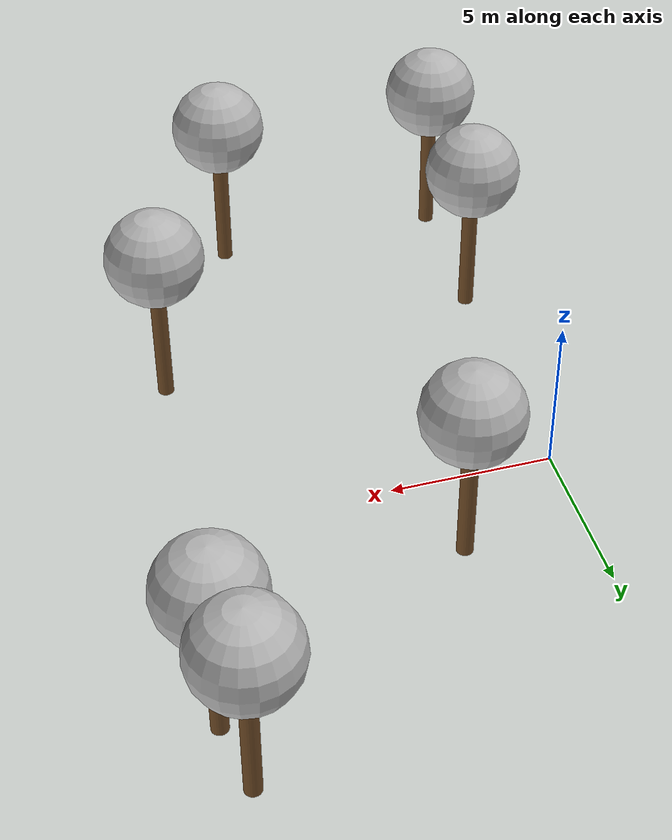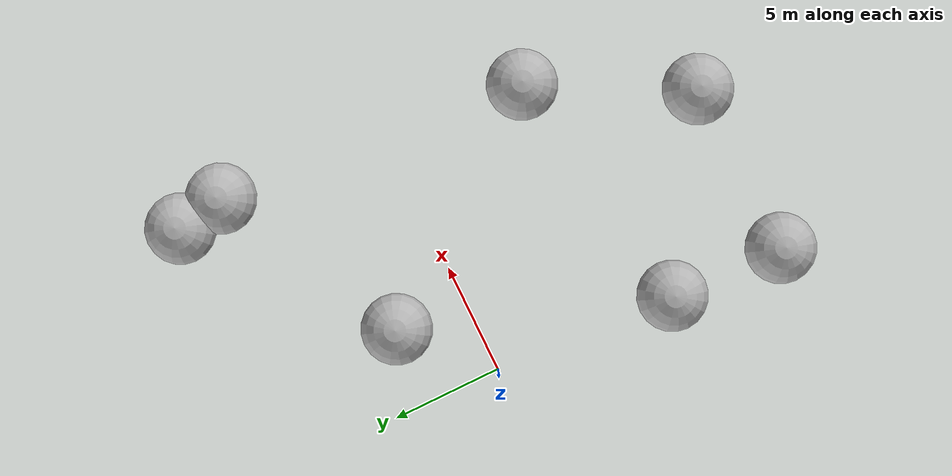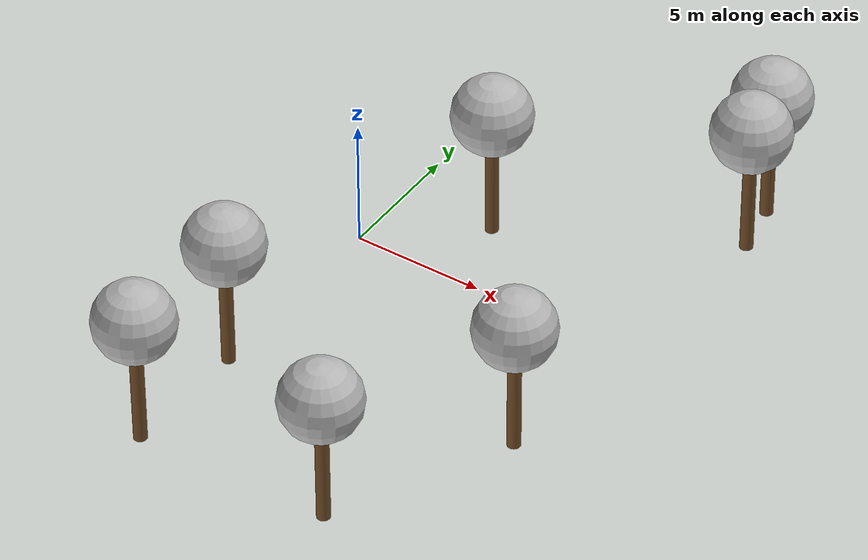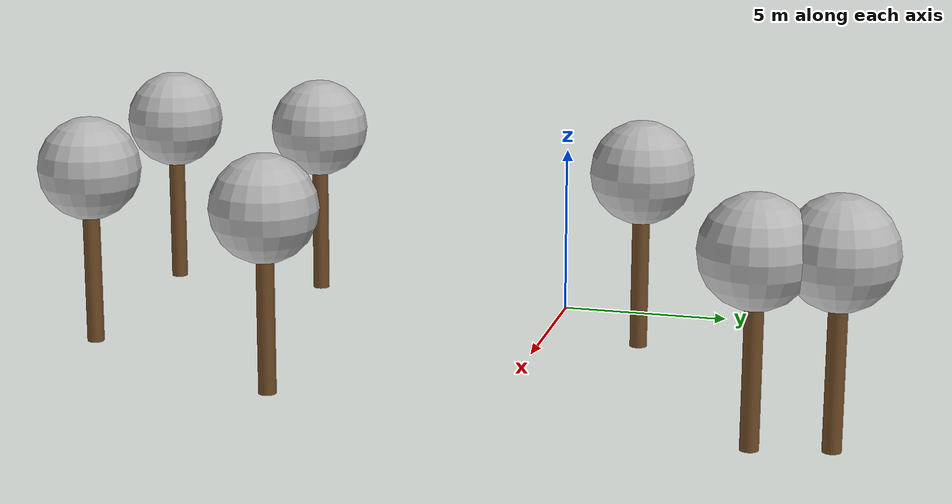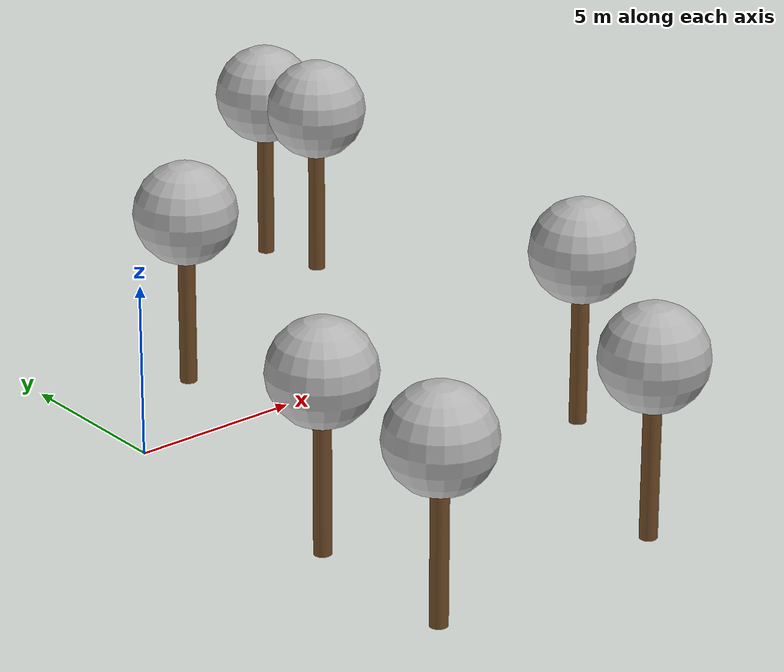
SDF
<sdf version="1.7">
 <world name="default">
  <model name="tree_simple_1">
   <static>1</static>
   <link name="link">
    <pose>0 0 0.1 0 -0 0</pose>
    <inertial>
     <mass>666</mass>
     <inertia>
      <ixx>0.0861167</ixx>
      <ixy>0</ixy>
      <ixz>0</ixz>
      <iyy>0.0861167</iyy>
      <iyz>0</iyz>
      <izz>0.0861167</izz>
     </inertia>
    </inertial>
    <collision name="collision_trunk">
     <pose>0 0 2 0 -0 0</pose>
     <geometry><cylinder><radius>0.25</radius><length>4</length></cylinder></geometry>
     <surface>
      <contact>
       <poissons_ratio>0.347</poissons_ratio>
       <elastic_modulus>8.8e+09</elastic_modulus>
       <ode><kp>100000</kp><kd>100</kd><max_vel>100</max_vel><min_depth>0.001</min_depth></ode>
      </contact>
      <friction>
       <torsional>
        <coefficient>1</coefficient>
        <use_patch_radius>0</use_patch_radius>
        <surface_radius>0.01</surface_radius>
       </torsional>
      </friction>
     </surface>
    </collision>
    <collision name="collision_treetop">
     <pose>0 0 5.2 0 -0 0</pose>
     <geometry><sphere><radius>1.5</radius></sphere></geometry>
     <surface>
      <contact>
       <poissons_ratio>0.347</poissons_ratio>
       <elastic_modulus>8.8e+09</elastic_modulus>
       <ode><kp>100000</kp><kd>100</kd><max_vel>100</max_vel><min_depth>0.001</min_depth></ode>
      </contact>
      <friction>
       <torsional>
        <coefficient>1</coefficient>
        <use_patch_radius>0</use_patch_radius>
        <surface_radius>0.01</surface_radius>
       </torsional>
      </friction>
     </surface>
    </collision>
    <visual name="trunk">
     <pose>0 0 2 0 -0 0</pose>
     <geometry><cylinder><radius>0.25</radius><length>4</length></cylinder></geometry>
     <material>
      <script>
       <uri>model://tree_simple/scripts</uri>
       <uri>model://tree_simple/materials/textures</uri>
       <name>TreeSimple/Trunk</name>
      </script>
     </material>
    </visual>
    <visual name="treetop">
     <pose>0 0 5.2 0 -0 0</pose>
     <geometry><sphere><radius>1.5</radius></sphere></geometry>
     <material>
      <script>
       <uri>model://tree_simple/scripts</uri>
       <uri>model://tree_simple/materials/textures</uri>
       <name>TreeSimple/Treetop</name>
      </script>
     </material>
    </visual>
   </link>
   <pose>-0.185966 -12.8585 0 0 -0 0</pose>
  </model>
  <model name="tree_simple_4">
   <static>1</static>
   <link name="link">
    <pose>0 0 0.1 0 -0 0</pose>
    <inertial>
     <mass>666</mass>
     <inertia>
      <ixx>0.0861167</ixx>
      <ixy>0</ixy>
      <ixz>0</ixz>
      <iyy>0.0861167</iyy>
      <iyz>0</iyz>
      <izz>0.0861167</izz>
     </inertia>
    </inertial>
    <collision name="collision_trunk">
     <pose>0 0 2 0 -0 0</pose>
     <geometry><cylinder><radius>0.25</radius><length>4</length></cylinder></geometry>
     <surface>
      <contact>
       <poissons_ratio>0.347</poissons_ratio>
       <elastic_modulus>8.8e+09</elastic_modulus>
       <ode><kp>100000</kp><kd>100</kd><max_vel>100</max_vel><min_depth>0.001</min_depth></ode>
      </contact>
      <friction>
       <torsional>
        <coefficient>1</coefficient>
        <use_patch_radius>0</use_patch_radius>
        <surface_radius>0.01</surface_radius>
       </torsional>
      </friction>
     </surface>
    </collision>
    <collision name="collision_treetop">
     <pose>0 0 5.2 0 -0 0</pose>
     <geometry><sphere><radius>1.5</radius></sphere></geometry>
     <surface>
      <contact>
       <poissons_ratio>0.347</poissons_ratio>
       <elastic_modulus>8.8e+09</elastic_modulus>
       <ode><kp>100000</kp><kd>100</kd><max_vel>100</max_vel><min_depth>0.001</min_depth></ode>
      </contact>
      <friction>
       <torsional>
        <coefficient>1</coefficient>
        <use_patch_radius>0</use_patch_radius>
        <surface_radius>0.01</surface_radius>
       </torsional>
      </friction>
     </surface>
    </collision>
    <visual name="trunk">
     <pose>0 0 2 0 -0 0</pose>
     <geometry><cylinder><radius>0.25</radius><length>4</length></cylinder></geometry>
     <material>
      <script>
       <uri>model://tree_simple/scripts</uri>
       <uri>model://tree_simple/materials/textures</uri>
       <name>TreeSimple/Trunk</name>
      </script>
     </material>
    </visual>
    <visual name="treetop">
     <pose>0 0 5.2 0 -0 0</pose>
     <geometry><sphere><radius>1.5</radius></sphere></geometry>
     <material>
      <script>
       <uri>model://tree_simple/scripts</uri>
       <uri>model://tree_simple/materials/textures</uri>
       <name>TreeSimple/Treetop</name>
      </script>
     </material>
    </visual>
   </link>
   <pose>-0.019596 -7.96246 0 0 -0 0</pose>
  </model>
  <model name="tree_simple_6">
   <static>1</static>
   <link name="link">
    <pose>0 0 0.1 0 -0 0</pose>
    <inertial>
     <mass>666</mass>
     <inertia>
      <ixx>0.0861167</ixx>
      <ixy>0</ixy>
      <ixz>0</ixz>
      <iyy>0.0861167</iyy>
      <iyz>0</iyz>
      <izz>0.0861167</izz>
     </inertia>
    </inertial>
    <collision name="collision_trunk">
     <pose>0 0 2 0 -0 0</pose>
     <geometry><cylinder><radius>0.25</radius><length>4</length></cylinder></geometry>
     <surface>
      <contact>
       <poissons_ratio>0.347</poissons_ratio>
       <elastic_modulus>8.8e+09</elastic_modulus>
       <ode><kp>100000</kp><kd>100</kd><max_vel>100</max_vel><min_depth>0.001</min_depth></ode>
      </contact>
      <friction>
       <torsional>
        <coefficient>1</coefficient>
        <use_patch_radius>0</use_patch_radius>
        <surface_radius>0.01</surface_radius>
       </torsional>
      </friction>
     </surface>
    </collision>
    <collision name="collision_treetop">
     <pose>0 0 5.2 0 -0 0</pose>
     <geometry><sphere><radius>1.5</radius></sphere></geometry>
     <surface>
      <contact>
       <poissons_ratio>0.347</poissons_ratio>
       <elastic_modulus>8.8e+09</elastic_modulus>
       <ode><kp>100000</kp><kd>100</kd><max_vel>100</max_vel><min_depth>0.001</min_depth></ode>
      </contact>
      <friction>
       <torsional>
        <coefficient>1</coefficient>
        <use_patch_radius>0</use_patch_radius>
        <surface_radius>0.01</surface_radius>
       </torsional>
      </friction>
     </surface>
    </collision>
    <visual name="trunk">
     <pose>0 0 2 0 -0 0</pose>
     <geometry><cylinder><radius>0.25</radius><length>4</length></cylinder></geometry>
     <material>
      <script>
       <uri>model://tree_simple/scripts</uri>
       <uri>model://tree_simple/materials/textures</uri>
       <name>TreeSimple/Trunk</name>
      </script>
     </material>
    </visual>
    <visual name="treetop">
     <pose>0 0 5.2 0 -0 0</pose>
     <geometry><sphere><radius>1.5</radius></sphere></geometry>
     <material>
      <script>
       <uri>model://tree_simple/scripts</uri>
       <uri>model://tree_simple/materials/textures</uri>
       <name>TreeSimple/Treetop</name>
      </script>
     </material>
    </visual>
   </link>
   <pose>3.69992 2.9148 0 0 -0 0</pose>
  </model>
  <model name="tree_simple_7">
   <static>1</static>
   <link name="link">
    <pose>0 0 0.1 0 -0 0</pose>
    <inertial>
     <mass>666</mass>
     <inertia>
      <ixx>0.0861167</ixx>
      <ixy>0</ixy>
      <ixz>0</ixz>
      <iyy>0.0861167</iyy>
      <iyz>0</iyz>
      <izz>0.0861167</izz>
     </inertia>
    </inertial>
    <collision name="collision_trunk">
     <pose>0 0 2 0 -0 0</pose>
     <geometry><cylinder><radius>0.25</radius><length>4</length></cylinder></geometry>
     <surface>
      <contact>
       <poissons_ratio>0.347</poissons_ratio>
       <elastic_modulus>8.8e+09</elastic_modulus>
       <ode><kp>100000</kp><kd>100</kd><max_vel>100</max_vel><min_depth>0.001</min_depth></ode>
      </contact>
      <friction>
       <torsional>
        <coefficient>1</coefficient>
        <use_patch_radius>0</use_patch_radius>
        <surface_radius>0.01</surface_radius>
       </torsional>
      </friction>
     </surface>
    </collision>
    <collision name="collision_treetop">
     <pose>0 0 5.2 0 -0 0</pose>
     <geometry><sphere><radius>1.5</radius></sphere></geometry>
     <surface>
      <contact>
       <poissons_ratio>0.347</poissons_ratio>
       <elastic_modulus>8.8e+09</elastic_modulus>
       <ode><kp>100000</kp><kd>100</kd><max_vel>100</max_vel><min_depth>0.001</min_depth></ode>
      </contact>
      <friction>
       <torsional>
        <coefficient>1</coefficient>
        <use_patch_radius>0</use_patch_radius>
        <surface_radius>0.01</surface_radius>
       </torsional>
      </friction>
     </surface>
    </collision>
    <visual name="trunk">
     <pose>0 0 2 0 -0 0</pose>
     <geometry><cylinder><radius>0.25</radius><length>4</length></cylinder></geometry>
     <material>
      <script>
       <uri>model://tree_simple/scripts</uri>
       <uri>model://tree_simple/materials/textures</uri>
       <name>TreeSimple/Trunk</name>
      </script>
     </material>
    </visual>
    <visual name="treetop">
     <pose>0 0 5.2 0 -0 0</pose>
     <geometry><sphere><radius>1.5</radius></sphere></geometry>
     <material>
      <script>
       <uri>model://tree_simple/scripts</uri>
       <uri>model://tree_simple/materials/textures</uri>
       <name>TreeSimple/Treetop</name>
      </script>
     </material>
    </visual>
   </link>
   <pose>11.3402 9.15214 0 0 -0 0</pose>
  </model>
  <model name="tree_simple_8">
   <static>1</static>
   <link name="link">
    <pose>0 0 0.1 0 -0 0</pose>
    <inertial>
     <mass>666</mass>
     <inertia>
      <ixx>0.0861167</ixx>
      <ixy>0</ixy>
      <ixz>0</ixz>
      <iyy>0.0861167</iyy>
      <iyz>0</iyz>
      <izz>0.0861167</izz>
     </inertia>
    </inertial>
    <collision name="collision_trunk">
     <pose>0 0 2 0 -0 0</pose>
     <geometry><cylinder><radius>0.25</radius><length>4</length></cylinder></geometry>
     <surface>
      <contact>
       <poissons_ratio>0.347</poissons_ratio>
       <elastic_modulus>8.8e+09</elastic_modulus>
       <ode><kp>100000</kp><kd>100</kd><max_vel>100</max_vel><min_depth>0.001</min_depth></ode>
      </contact>
      <friction>
       <torsional>
        <coefficient>1</coefficient>
        <use_patch_radius>0</use_patch_radius>
        <surface_radius>0.01</surface_radius>
       </torsional>
      </friction>
     </surface>
    </collision>
    <collision name="collision_treetop">
     <pose>0 0 5.2 0 -0 0</pose>
     <geometry><sphere><radius>1.5</radius></sphere></geometry>
     <surface>
      <contact>
       <poissons_ratio>0.347</poissons_ratio>
       <elastic_modulus>8.8e+09</elastic_modulus>
       <ode><kp>100000</kp><kd>100</kd><max_vel>100</max_vel><min_depth>0.001</min_depth></ode>
      </contact>
      <friction>
       <torsional>
        <coefficient>1</coefficient>
        <use_patch_radius>0</use_patch_radius>
        <surface_radius>0.01</surface_radius>
       </torsional>
      </friction>
     </surface>
    </collision>
    <visual name="trunk">
     <pose>0 0 2 0 -0 0</pose>
     <geometry><cylinder><radius>0.25</radius><length>4</length></cylinder></geometry>
     <material>
      <script>
       <uri>model://tree_simple/scripts</uri>
       <uri>model://tree_simple/materials/textures</uri>
       <name>TreeSimple/Trunk</name>
      </script>
     </material>
    </visual>
    <visual name="treetop">
     <pose>0 0 5.2 0 -0 0</pose>
     <geometry><sphere><radius>1.5</radius></sphere></geometry>
     <material>
      <script>
       <uri>model://tree_simple/scripts</uri>
       <uri>model://tree_simple/materials/textures</uri>
       <name>TreeSimple/Treetop</name>
      </script>
     </material>
    </visual>
   </link>
   <pose>11.7341 7.11397 0 0 -0 0</pose>
  </model>
  <model name="tree_simple_9">
   <static>1</static>
   <link name="link">
    <pose>0 0 0.1 0 -0 0</pose>
    <inertial>
     <mass>666</mass>
     <inertia>
      <ixx>0.0861167</ixx>
      <ixy>0</ixy>
      <ixz>0</ixz>
      <iyy>0.0861167</iyy>
      <iyz>0</iyz>
      <izz>0.0861167</izz>
     </inertia>
    </inertial>
    <collision name="collision_trunk">
     <pose>0 0 2 0 -0 0</pose>
     <geometry><cylinder><radius>0.25</radius><length>4</length></cylinder></geometry>
     <surface>
      <contact>
       <poissons_ratio>0.347</poissons_ratio>
       <elastic_modulus>8.8e+09</elastic_modulus>
       <ode><kp>100000</kp><kd>100</kd><max_vel>100</max_vel><min_depth>0.001</min_depth></ode>
      </contact>
      <friction>
       <torsional>
        <coefficient>1</coefficient>
        <use_patch_radius>0</use_patch_radius>
        <surface_radius>0.01</surface_radius>
       </torsional>
      </friction>
     </surface>
    </collision>
    <collision name="collision_treetop">
     <pose>0 0 5.2 0 -0 0</pose>
     <geometry><sphere><radius>1.5</radius></sphere></geometry>
     <surface>
      <contact>
       <poissons_ratio>0.347</poissons_ratio>
       <elastic_modulus>8.8e+09</elastic_modulus>
       <ode><kp>100000</kp><kd>100</kd><max_vel>100</max_vel><min_depth>0.001</min_depth></ode>
      </contact>
      <friction>
       <torsional>
        <coefficient>1</coefficient>
        <use_patch_radius>0</use_patch_radius>
        <surface_radius>0.01</surface_radius>
       </torsional>
      </friction>
     </surface>
    </collision>
    <visual name="trunk">
     <pose>0 0 2 0 -0 0</pose>
     <geometry><cylinder><radius>0.25</radius><length>4</length></cylinder></geometry>
     <material>
      <script>
       <uri>model://tree_simple/scripts</uri>
       <uri>model://tree_simple/materials/textures</uri>
       <name>TreeSimple/Trunk</name>
      </script>
     </material>
    </visual>
    <visual name="treetop">
     <pose>0 0 5.2 0 -0 0</pose>
     <geometry><sphere><radius>1.5</radius></sphere></geometry>
     <material>
      <script>
       <uri>model://tree_simple/scripts</uri>
       <uri>model://tree_simple/materials/textures</uri>
       <name>TreeSimple/Treetop</name>
      </script>
     </material>
    </visual>
   </link>
   <pose>10.5599 -6.15931 0 0 -0 0</pose>
  </model>
  <model name="tree_simple_10">
   <static>1</static>
   <link name="link">
    <pose>0 0 0.1 0 -0 0</pose>
    <inertial>
     <mass>666</mass>
     <inertia>
      <ixx>0.0861167</ixx>
      <ixy>0</ixy>
      <ixz>0</ixz>
      <iyy>0.0861167</iyy>
      <iyz>0</iyz>
      <izz>0.0861167</izz>
     </inertia>
    </inertial>
    <collision name="collision_trunk">
     <pose>0 0 2 0 -0 0</pose>
     <geometry><cylinder><radius>0.25</radius><length>4</length></cylinder></geometry>
     <surface>
      <contact>
       <poissons_ratio>0.347</poissons_ratio>
       <elastic_modulus>8.8e+09</elastic_modulus>
       <ode><kp>100000</kp><kd>100</kd><max_vel>100</max_vel><min_depth>0.001</min_depth></ode>
      </contact>
      <friction>
       <torsional>
        <coefficient>1</coefficient>
        <use_patch_radius>0</use_patch_radius>
        <surface_radius>0.01</surface_radius>
       </torsional>
      </friction>
     </surface>
    </collision>
    <collision name="collision_treetop">
     <pose>0 0 5.2 0 -0 0</pose>
     <geometry><sphere><radius>1.5</radius></sphere></geometry>
     <surface>
      <contact>
       <poissons_ratio>0.347</poissons_ratio>
       <elastic_modulus>8.8e+09</elastic_modulus>
       <ode><kp>100000</kp><kd>100</kd><max_vel>100</max_vel><min_depth>0.001</min_depth></ode>
      </contact>
      <friction>
       <torsional>
        <coefficient>1</coefficient>
        <use_patch_radius>0</use_patch_radius>
        <surface_radius>0.01</surface_radius>
       </torsional>
      </friction>
     </surface>
    </collision>
    <visual name="trunk">
     <pose>0 0 2 0 -0 0</pose>
     <geometry><cylinder><radius>0.25</radius><length>4</length></cylinder></geometry>
     <material>
      <script>
       <uri>model://tree_simple/scripts</uri>
       <uri>model://tree_simple/materials/textures</uri>
       <name>TreeSimple/Trunk</name>
      </script>
     </material>
    </visual>
    <visual name="treetop">
     <pose>0 0 5.2 0 -0 0</pose>
     <geometry><sphere><radius>1.5</radius></sphere></geometry>
     <material>
      <script>
       <uri>model://tree_simple/scripts</uri>
       <uri>model://tree_simple/materials/textures</uri>
       <name>TreeSimple/Treetop</name>
      </script>
     </material>
    </visual>
   </link>
   <pose>7.21751 -12.635 0 0 -0 0</pose>
  </model>
 </world>
</sdf>
